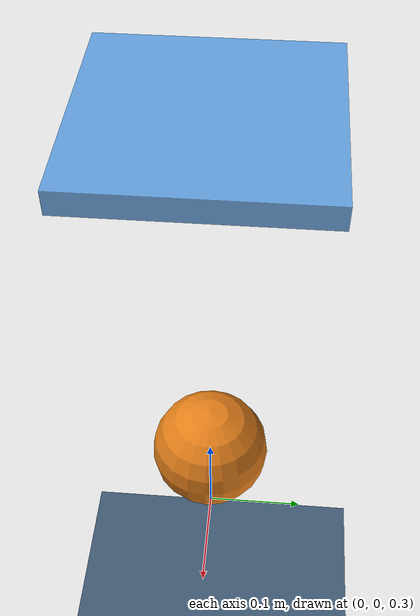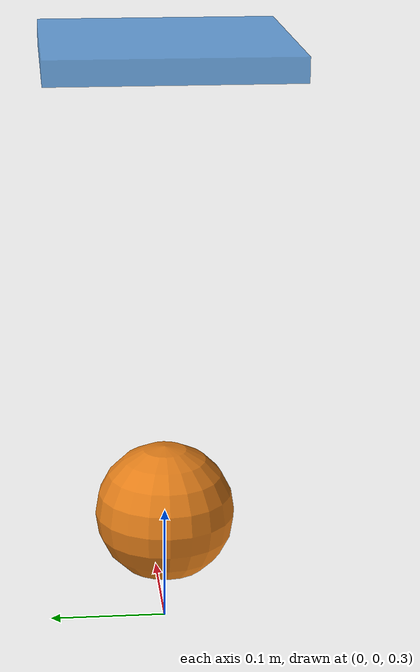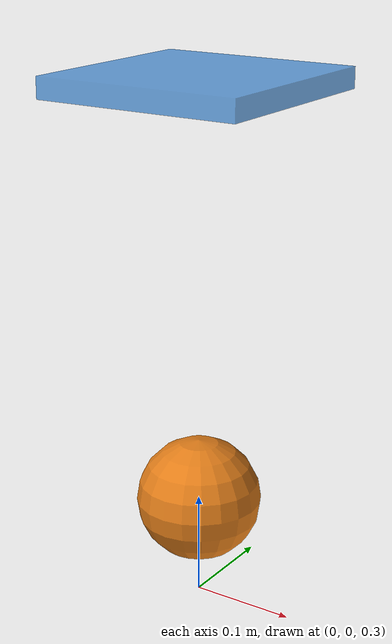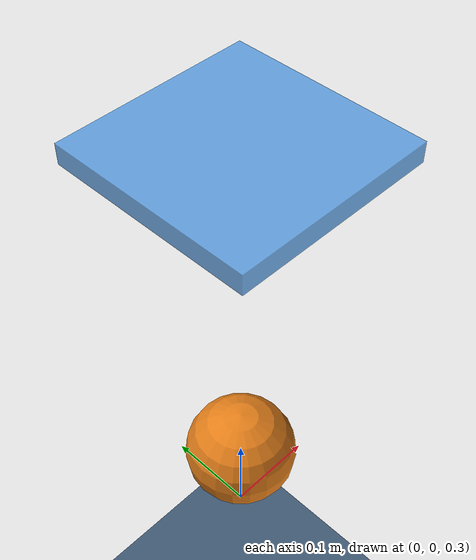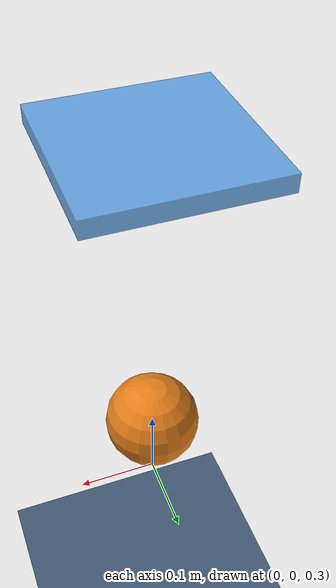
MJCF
<mujoco model="dribble">
  <compiler angle="radian" balanceinertia="true"/>

  <option timestep="0.002" gravity="0 0 -9.81" integrator="Euler">
    <flag contact="enable"/>
  </option>

  <default>
    <geom condim="4" friction="0.8 0.005 0.0001"/>
    <joint damping="0.1"/>
  </default>

  <asset>
    <texture name="grid" type="2d" builtin="checker"
             width="512" height="512"
             rgb1="0.2 0.3 0.4" rgb2="0.3 0.4 0.5"/>
    <material name="grid" texture="grid" texrepeat="8 8"/>
    <material name="ball_mat" rgba="0.9 0.5 0.1 1"/>
    <material name="paddle_mat" rgba="0.3 0.6 0.9 0.8"/>
  </asset>

  <worldbody>
    <!-- Ground plane (constraint boundary) -->
    <geom name="ground" type="plane" size="5 5 0.1"
          material="grid" condim="4"
          solref="0.004 0.3" solimp="0.95 0.99 0.001"/>

    <!-- Ball: freejoint, non-uniform inertia -->
    <body name="ball" pos="0 0 0.4">
      <freejoint name="ball_joint"/>
      <geom name="ball_geom" type="sphere" size="0.06"
            mass="0.3" material="ball_mat"
            solref="0.004 0.3" solimp="0.95 0.99 0.001"
            condim="4" friction="0.6 0.005 0.0001"/>
      <!-- Non-uniform inertia: I₁ ≠ I₂ ≠ I₃
           Triangle inequality satisfied: 0.0004+0.0008 ≥ 0.001 -->
      <inertial pos="0 0 0" mass="0.3"
                diaginertia="0.001 0.0008 0.0004"/>
    </body>

    <!-- Hand / paddle (damper κ): ABOVE the ball -->
    <body name="paddle_base" pos="0 0 0.8">
      <joint name="paddle_x" type="slide" axis="1 0 0"
             range="-2 2" damping="5"/>
      <joint name="paddle_y" type="slide" axis="0 1 0"
             range="-2 2" damping="5"/>
      <joint name="paddle_z" type="slide" axis="0 0 1"
             range="-0.8 0.5" damping="5"/>
      <geom name="paddle_geom" type="box" size="0.10 0.10 0.01"
            mass="0.5" material="paddle_mat"
            condim="4" friction="1.0 0.005 0.0001"
            solref="0.003 1" solimp="0.95 0.99 0.001"/>
      <!-- Touch sensor site on underside of paddle -->
      <site name="paddle_site" type="box" size="0.10 0.10 0.01"
            pos="0 0 -0.01" rgba="0 0 0 0"/>
    </body>
  </worldbody>

  <actuator>
    <position name="act_x" joint="paddle_x" kp="200"
              ctrlrange="-2 2"/>
    <position name="act_y" joint="paddle_y" kp="200"
              ctrlrange="-2 2"/>
    <position name="act_z" joint="paddle_z" kp="200"
              ctrlrange="-0.8 0.5"/>
  </actuator>

  <sensor>
    <framepos name="ball_pos" objtype="body" objname="ball"/>
    <framequat name="ball_quat" objtype="body" objname="ball"/>
    <framelinvel name="ball_vel" objtype="body" objname="ball"/>
    <frameangvel name="ball_angvel" objtype="body" objname="ball"/>
    <framepos name="paddle_pos" objtype="body" objname="paddle_base"/>
    <touch name="paddle_touch" site="paddle_site"/>
  </sensor>
</mujoco>
